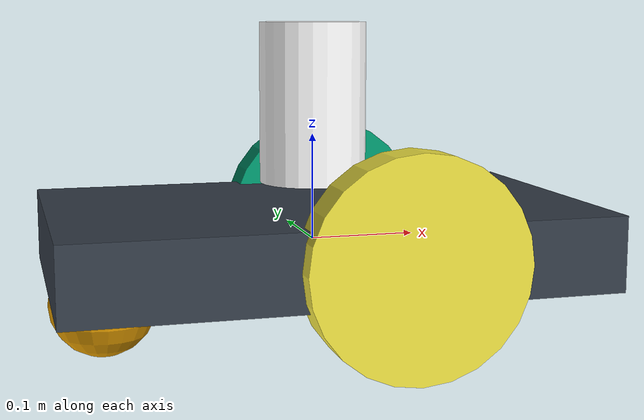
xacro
<?xml version="1.0" ?>
 <robot name="robot" xmlns:xacro="http://www.ros.org/wiki/xacro">
  <xacro:arg name="robot_name" default="robot"/>

	<xacro:include filename="$(find pso_robot)/urdf/materials.xacro"/>
	<xacro:include filename="$(find pso_robot)/urdf/robot_gazebo_plugins.gazebo"/>
	<xacro:include filename="$(find pso_robot)/urdf/macros.xacro"/>

  <link name="$(arg robot_name)/link_chassis">
    <!-- pose and inertia -->
    <pose>0 0 0.1 0 0 0</pose>
    <inertial>
      <mass value="5"/>
      <origin rpy="0 0 0" xyz="0 0 0"/>
      <inertia ixx="0.0395416666667" ixy="0" ixz="0" iyy="0.106208333333" iyz="0" izz="0.106208333333"/>
    </inertial>
    <!-- body -->
    <collision name="$(arg robot_name)/collision_chassis">
      <geometry>
        <box size="0.5 0.3 0.07"/>
      </geometry>
    </collision>
    <visual>
      <origin rpy="0 0 0" xyz="0 0 0"/>
      <geometry>
        <box size="0.5 0.3 0.07"/>
      </geometry>
      <material name="blue"/>
    </visual>

    <!-- caster front -->
    <collision name="$(arg robot_name)/caster_front_collision">
      <origin rpy=" 0 0 0" xyz="-0.2 0 -0.05"/>
      <geometry>
        <sphere radius="0.05"/>
      </geometry>
      <surface>
        <friction>
          <ode>
            <mu>0</mu>
            <mu2>0</mu2>
            <slip1>1.0</slip1>
            <slip2>1.0</slip2>
          </ode>
        </friction>
      </surface>
    </collision>
    <visual name="$(arg robot_name)/caster_front_visual">
      <origin rpy=" 0 0 0" xyz="-0.2 0 -0.05"/>
      <geometry>
        <sphere radius="0.05"/>
      </geometry>
    </visual>
  </link>

  <link name="$(arg robot_name)/sensor_laser">
    <inertial>
        <origin xyz="0 0 0" rpy="0 0 0" />
        <mass value="1" />
        <inertia ixx="0.0395416666667" ixy="0" ixz="0" iyy="0.106208333333" iyz="0" izz="0.106208333333"/>
    </inertial>

    <visual>
        <origin xyz="0 0 0" rpy="0 0 0" />
        <geometry>
          <cylinder radius="0.05" length="0.15"/>
        </geometry>
        <material name="white" />
    </visual>

    <collision>
        <origin xyz="0 0 0" rpy="0 0 0"/>
        <geometry>
          <cylinder radius="0.05" length="0.15"/>
        </geometry>
    </collision>
  </link>

  <joint name="$(arg robot_name)/joint_sensor_laser" type="fixed">
    <origin xyz="0 0 0.13" rpy="0 0 0"/>
    <parent link="$(arg robot_name)/link_chassis"/>
    <child link="$(arg robot_name)/sensor_laser"/>
  </joint>

	<link name="$(arg robot_name)/link_right_wheel">
		    <inertial>
		      <mass value="0.2"/>
		      <origin rpy="0 1.5707 1.5707" xyz="0 0 0"/>
		      <inertia ixx="0.000526666666667" ixy="0" ixz="0" iyy="0.000526666666667" iyz="0" izz="0.001"/>
		    </inertial>
		    <collision name="$(arg robot_name)/link_right_wheel_collision">
		      <origin rpy="0 1.5707 1.5707" xyz="0 0 0"/>
		      <geometry>
		        <cylinder length="0.04" radius="0.1"/>
		      </geometry>
		    </collision>
		    <visual name="$(arg robot_name)/link_right_wheel_visual">
		      <origin rpy="0 1.5707 1.5707" xyz="0 0 0"/>
		      <geometry>
		        <cylinder length="0.04" radius="0.1"/>
		      </geometry>
		    </visual>
		  </link>

  <joint name="$(arg robot_name)/joint_right_wheel" type="continuous">
    <origin rpy="0 0 0" xyz="0.05 0.15 0"/>
    <child link="$(arg robot_name)/link_right_wheel"/>
    <parent link="$(arg robot_name)/link_chassis"/>
    <axis rpy="0 0 0" xyz="0 1 0"/>
    <limit effort="10000" velocity="1000"/>
    <joint_properties damping="1.0" friction="1.0"/>
  </joint>

<link name="$(arg robot_name)/link_left_wheel">
		    <inertial>
		      <mass value="0.2"/>
		      <origin rpy="0 1.5707 1.5707" xyz="0 0 0"/>
		      <inertia ixx="0.000526666666667" ixy="0" ixz="0" iyy="0.000526666666667" iyz="0" izz="0.001"/>
		    </inertial>
		    <collision name="$(arg robot_name)/link_left_wheel_collision">
		      <origin rpy="0 1.5707 1.5707" xyz="0 0 0"/>
		      <geometry>
		        <cylinder length="0.04" radius="0.1"/>
		      </geometry>
		    </collision>
		    <visual name="$(arg robot_name)/link_left_wheel_visual">
		      <origin rpy="0 1.5707 1.5707" xyz="0 0 0"/>
		      <geometry>
		        <cylinder length="0.04" radius="0.1"/>
		      </geometry>
		    </visual>
		  </link>

  <joint name="$(arg robot_name)/joint_left_wheel" type="continuous">
    <origin rpy="0 0 0" xyz="0.05 -0.15 0"/>
    <child link="$(arg robot_name)/link_left_wheel"/>
    <parent link="$(arg robot_name)/link_chassis"/>
    <axis rpy="0 0 0" xyz="0 1 0"/>
    <limit effort="10000" velocity="1000"/>
    <joint_properties damping="1.0" friction="1.0"/>
  </joint>

  <transmission name="$(arg robot_name)/tran1">
    <type>transmission_interface/SimpleTransmission</type>
    <joint name="joint_left_wheel">
      <hardwareInterface>EffortJointInterface</hardwareInterface>
    </joint>
    <actuator name="motor1">
      <hardwareInterface>EffortJointInterface</hardwareInterface>
      <mechanicalReduction>1</mechanicalReduction>
    </actuator>
  </transmission>

<transmission name="$(arg robot_name)/tran2">
    <type>transmission_interface/SimpleTransmission</type>
    <joint name="joint_right_wheel">
      <hardwareInterface>EffortJointInterface</hardwareInterface>
    </joint>
    <actuator name="motor2">
      <hardwareInterface>EffortJointInterface</hardwareInterface>
      <mechanicalReduction>1</mechanicalReduction>
    </actuator>
  </transmission>

</robot>

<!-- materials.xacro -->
<robot>

	<material name="black">
	    <color rgba="0.0 0.0 0.0 1.0"/>
	  </material>
	  <material name="blue">
	    <color rgba="0.203125 0.23828125 0.28515625 1.0"/>
	  </material>
	  <material name="green">
	    <color rgba="0.0 0.8 0.0 1.0"/>
	  </material>
	  <material name="grey">
	    <color rgba="0.2 0.2 0.2 1.0"/>
	  </material>
	  <material name="orange">
	    <color rgba="1.0 0.423529411765 0.0392156862745 1.0"/>
	  </material>
	  <material name="brown">
	    <color rgba="0.870588235294 0.811764705882 0.764705882353 1.0"/>
	  </material>
	  <material name="red">
	    <color rgba="0.80078125 0.12890625 0.1328125 1.0"/>
	  </material>
	  <material name="white">
	    <color rgba="1.0 1.0 1.0 1.0"/>
	  </material>

</robot>
